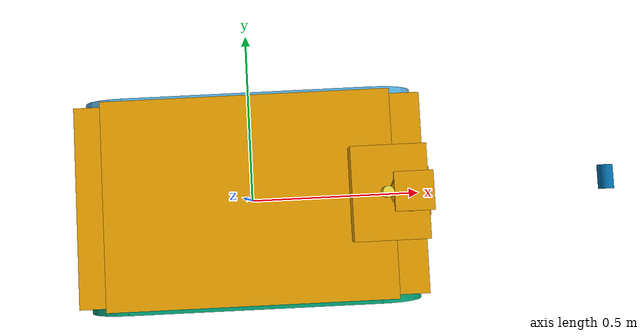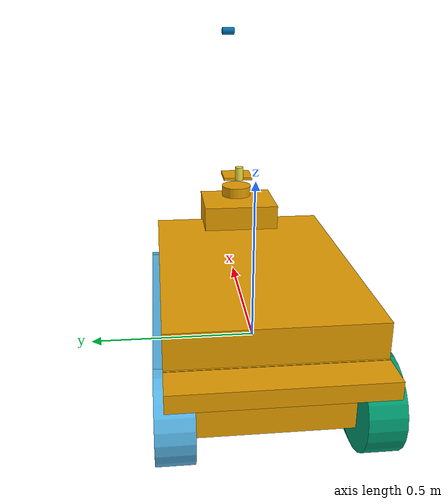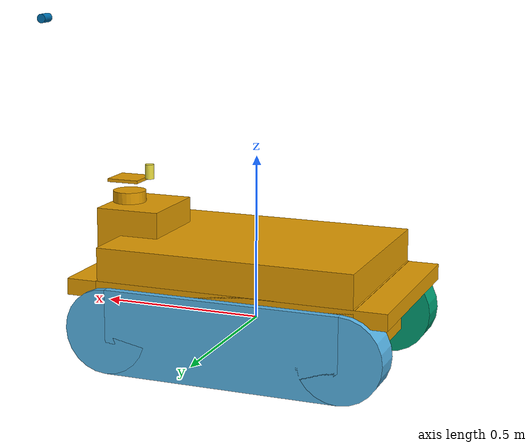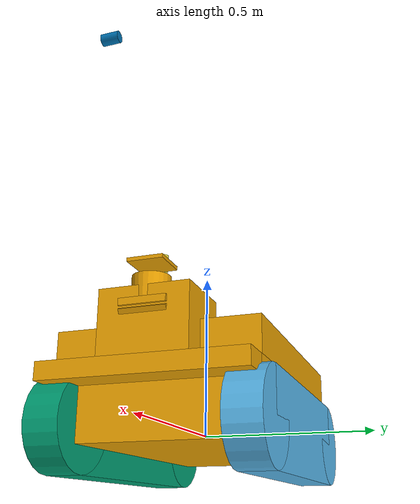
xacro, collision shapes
<?xml version='1.0' encoding='utf-8'?>
<robot name='marble_hd2_sensor_config_1' xmlns:xacro='http://ros.org/wiki/xacro'>
  <xacro:arg name="name" default="marble_hd2_sensor_config_1"/>
  <xacro:property name="robot_namespace" value="$(arg name)"/>
  <link name='${robot_namespace}/base_link'>
    <inertial>
      <origin xyz='-0.000649 -0.084945 0.062329' rpy='0 -0 0'/>
      <mass value='34.02'/>
      <inertia ixx='0.615397' ixy='-0.0240585' ixz='-0.120749' iyy='1.75388' iyz='-0.0028322' izz='2.03641'/>
    </inertial>
    <collision name='base_link_collision'>
      <origin xyz='0 0 0.12' rpy='0 -0 0'/>
      <geometry>
        <box size='0.9874 0.5709 0.05'/>
      </geometry>
    </collision>
    <collision name='base_link_collision_bottom'>
      <origin xyz='0 0 0.046' rpy='0 -0 0'/>
      <geometry>
        <box size='0.8 0.5709 0.2'/>
      </geometry>
    </collision>
    <collision name='base_link_collision_1'>
      <origin xyz='0 0 0.185625' rpy='0 -0 0'/>
      <geometry>
        <box size='0.78992 0.5709 0.12375'/>
      </geometry>
    </collision>
    <collision name='base_link_fixed_joint_lump__camera/camera_link_collision_1'>
      <origin xyz='0 0 0.05' rpy='0 -0 0'/>
      <geometry>
        <box size='0.0078 0.13 0.0192'/>
      </geometry>
    </collision>
    <collision name='base_link_fixed_joint_lump__camera/camera_link_collision_2'>
      <origin xyz='0.478 0 0.285' rpy='0 -0 0'/>
      <geometry>
        <box size='0.0078 0.13 0.0192'/>
      </geometry>
    </collision>
    <collision name='base_link_fixed_joint_lump__camera/camera_link_collision_3'>
      <origin xyz='0.473 0 0.26' rpy='0 0.5236 0'/>
      <geometry>
        <box size='0.0078 0.13 0.0192'/>
      </geometry>
    </collision>
    <collision name='base_link_fixed_joint_lump__velodyne_base_link_collision_6'>
      <origin xyz='0.424 0 0.327' rpy='0 -0 0'/>
      <geometry>
        <cylinder radius='0.0516' length='0.0717'/>
      </geometry>
    </collision>
    <collision name='base_link_fixed_joint_lump__velodyne_gimbal_plate_base_link_collision_7'>
      <origin xyz='0.424 0 0.4' rpy='0 -0 0'/>
      <geometry>
        <box size='0.1 0.1 0.01'/>
      </geometry>
    </collision>
    <collision name='base_link_fixed_joint_lump__sensor_tower_8'>
      <origin xyz='0.374 0 0.215' rpy='0 -0 0'/>
      <geometry>
        <box size='0.2 0.25 0.225'/>
      </geometry>
    </collision>
    <collision name='base_link_fixed_joint_lump__computer_block_9'>
      <origin xyz='0.05 0 0.155' rpy='0 -0 0'/>
      <geometry>
        <box size='0.3 0.355 0.16'/>
      </geometry>
    </collision>
    <visual name='base_link_visual'>
      <origin xyz='0 0 0' rpy='1.57 -0 1.57'/>
      <geometry>
        <mesh filename='package://marble_hd2_sensor_config_1/meshes/hd2_chassis.stl' scale='1 1 1'/>
      </geometry>
    </visual>
    <visual name='track_left_visual'>
      <origin xyz='0 0.2625 0' rpy='1.57 -0 1.57'/>
      <geometry>
        <mesh filename='package://marble_hd2_sensor_config_1/meshes/track.stl' scale='1 1 1'/>
      </geometry>
    </visual>
    <visual name='track_right_visual'>
      <origin xyz='0 -0.2625 0' rpy='1.57 -0 1.57'/>
      <geometry>
        <mesh filename='package://marble_hd2_sensor_config_1/meshes/track.stl' scale='1 1 1'/>
      </geometry>
    </visual>
    <visual name='base_link_fixed_joint_lump__camera/camera_link_visual_1'>
      <origin xyz='0.44 0 0.26' rpy='0 0.5236 0'/>
      <geometry>
        <mesh filename='package://marble_hd2_sensor_config_1/meshes/realsense.dae' scale='1 1 1'/>
      </geometry>
    </visual>
    <visual name='base_link_fixed_joint_lump__camera/camera_link_visual_2'>
      <origin xyz='0.44 0 0.295' rpy='0 -0 0'/>
      <geometry>
        <mesh filename='package://marble_hd2_sensor_config_1/meshes/realsense.dae' scale='1 1 1'/>
      </geometry>
    </visual>
    <visual name='base_link_fixed_joint_lump__velodyne_base_link_visual_10'>
      <origin xyz='0.354 0 0.327' rpy='0 -0 0'/>
      <geometry>
        <mesh filename='package://marble_hd2_sensor_config_1/meshes/VLP16_base_1.dae' scale='1 1 1'/>
      </geometry>
    </visual>
    <visual name='base_link_fixed_joint_lump__velodyne_base_link_visual_11'>
      <origin xyz='0.354 0 0.327' rpy='0 -0 0'/>
      <geometry>
        <mesh filename='package://marble_hd2_sensor_config_1/meshes/VLP16_base_2.dae' scale='1 1 1'/>
      </geometry>
    </visual>
    <visual name='base_link_fixed_joint_lump__velodyne_visual_12'>
      <origin xyz='0.354 0 0.327' rpy='0 -0 0'/>
      <geometry>
        <mesh filename='package://marble_hd2_sensor_config_1/meshes/VLP16_scan.dae' scale='1 1 1'/>
      </geometry>
    </visual>
    <visual name='base_link_fixed_joint_lump__planar_lidar_link_visual_14'>
      <origin xyz='0.354 0 0.127' rpy='0 -0 0'/>
      <geometry>
        <cylinder radius='0.045' length='0.05'/>
      </geometry>
    </visual>
    <visual name='base_link_fixed_joint_lump__velodyne_gimbal_plate_15'>
      <origin xyz='0.354 0 0.4' rpy='0 -0 0'/>
      <geometry>
        <box size='0.06 0.06 0.01'/>
      </geometry>
    </visual>
    <visual name='base_link_fixed_joint_lump__sensor_tower_16'>
      <origin xyz='0.354 0 0.19' rpy='0 -0 0'/>
      <geometry>
        <box size='0.18 0.25 0.275'/>
      </geometry>
    </visual>
    <visual name='base_link_fixed_joint_lump__computer_block_17'>
      <origin xyz='0.05 0 0.135' rpy='0 -0 0'/>
      <geometry>
        <box size='0.3 0.355 0.175'/>
      </geometry>
    </visual>
    <visual name='base_link_fixed_joint_lid_18'>
      <origin xyz='0 0 0.05' rpy='0 -0 0'/>
      <geometry>
        <box size='0.7 0.35 0.02'/>
      </geometry>
    </visual>
  </link>
  <sensor name='camera_front' update_rate='30'>
    <parent link='${robot_namespace}/base_link'/>
    <origin xyz='0.44 0 0.36' rpy='0 -0 0'/>
    <camera>
      <image width='1280' height='720' format='R8G8B8' hfov='1.5184' near='0.01' far='300' />
    </camera>
  </sensor>
  <sensor name='camera_down' update_rate='30'>
    <parent link='${robot_namespace}/base_link'/>
    <origin xyz='0.44 0 0.335' rpy='0 0.5236 0'/>
    <camera>
      <image width='1280' height='720' format='R8G8B8' hfov='1.5184' near='0.01' far='300' />
    </camera>
  </sensor>
  <sensor name='planar_laser' update_rate='10'>
    <parent link='${robot_namespace}/base_link'/>
    <origin xyz='0.354 0 0.127' rpy='0 -0 0'/>
  </sensor>
  <sensor name='front_laser' update_rate='20'>
    <parent link='${robot_namespace}/base_link'/>
    <origin xyz='0.354 0 0.387' rpy='0 -0 0'/>
  </sensor>
  <sensor name='imu_sensor' update_rate='250'>
    <parent link='${robot_namespace}/base_link'/>
    <origin xyz='0 0 0' rpy='0 -0 0'/>
  </sensor>
  <link name='${robot_namespace}/left_track'>
    <collision name='front_left_wheel_link_collision'>
      <origin xyz='0.36 0 0' rpy='1.5708 -0 0'/>
      <geometry>
        <cylinder radius='0.129' length='0.1'/>
      </geometry>
    </collision>
    <collision name='rear_left_wheel_link_collision'>
      <origin xyz='-0.36 0 0' rpy='1.5708 -0 0'/>
      <geometry>
        <cylinder radius='0.129' length='0.1'/>
      </geometry>
    </collision>
    <collision name='left_track_box_collision'>
      <geometry>
        <box size='0.72 0.1 0.258'/>
      </geometry>
    </collision>
  </link>
  <link name='${robot_namespace}/right_track'>
    <collision name='front_right_wheel_link_collision'>
      <origin xyz='0.36 0 0' rpy='1.5708 -0 0'/>
      <geometry>
        <cylinder radius='0.129' length='0.1'/>
      </geometry>
    </collision>
    <collision name='rear_right_wheel_link_collision'>
      <origin xyz='-0.36 0 0' rpy='1.5708 -0 0'/>
      <geometry>
        <cylinder radius='0.129' length='0.1'/>
      </geometry>
    </collision>
    <collision name='right_track_box_collision'>
      <geometry>
        <box size='0.72 0.1 0.258'/>
      </geometry>
    </collision>
  </link>
  <joint name='left_track_j' type='fixed'>
    <origin xyz='0 0.26 0' rpy='0 0 0'/>
    <parent link='${robot_namespace}/base_link'/>
    <child link='${robot_namespace}/left_track'/>
  </joint>
  <joint name='right_track_j' type='fixed'>
    <origin xyz='0 -0.26 0' rpy='0 0 0'/>
    <parent link='${robot_namespace}/base_link'/>
    <child link='${robot_namespace}/right_track'/>
  </joint>
  <link name='${robot_namespace}/pan_gimbal_link'>
    <inertial>
      <origin xyz='0 0 0' rpy='0 -0 0'/>
      <mass value='0.1'/>
      <inertia ixx='1' ixy='0' ixz='0' iyy='1' iyz='0' izz='1'/>
    </inertial>
    <collision name='pan_gimbal_link_collision'>
      <origin xyz='0 0 0' rpy='0 -0 0'/>
      <geometry>
        <cylinder radius='0.014' length='0.045'/>
      </geometry>
    </collision>
    <visual name='pan_gimbal_link_visual'>
      <origin xyz='0 0 0' rpy='0 -0 0'/>
      <geometry>
        <cylinder radius='0.014' length='0.045'/>
      </geometry>
    </visual>
  </link>
  <link name='${robot_namespace}/tilt_gimbal_link'>
    <inertial>
      <origin xyz='0 0 0' rpy='1.5708 -0 0'/>
      <mass value='0.1'/>
      <inertia ixx='1' ixy='0' ixz='0' iyy='1' iyz='0' izz='1'/>
    </inertial>
    <collision name='tilt_gimbal_link_collision'>
      <origin xyz='0 0 0' rpy='1.5708 -0 0'/>
      <geometry>
        <cylinder radius='0.014' length='0.045'/>
      </geometry>
    </collision>
    <visual name='tilt_gimbal_link_visual'>
      <origin xyz='0 0 0' rpy='1.5708 -0 0'/>
      <geometry>
        <cylinder radius='0.014' length='0.045'/>
      </geometry>
    </visual>
    <visual name='tilt_gimbal_link_fixed_joint_lump__camera/camera_link_visual_0'>
      <origin xyz='0 0 0.03' rpy='0 -0 0'/>
      <geometry>
        <mesh filename='package://marble_hd2_sensor_config_1/meshes/realsense.dae' scale='1 1 1'/>
      </geometry>
    </visual>
    <visual name='tilt_gimbal_link_fixed_joint_lump_bot_camera_plate_link_visual_1'>
      <origin xyz='0 0 0.017' rpy='0 -0 0'/>
      <geometry>
        <box size='0.025 0.13 0.007'/>
      </geometry>
    </visual>
    <visual name='tilt_gimbal_link_fixed_joint_lump_bot_camera_plate_link_visual_2'>
      <origin xyz='0 0 0.042' rpy='0 -0 0'/>
      <geometry>
        <box size='0.025 0.13 0.007'/>
      </geometry>
    </visual>
    <visual name='flashlight_flashlight_light_source_lamp_viz_visual'>
      <origin xyz='0 0 0.065' rpy='-0 1.3208 3.14'/>
      <geometry>
        <cylinder radius='0.019' length='0.005'/>
      </geometry>
    </visual>
  </link>
  <sensor name='camera_pan_tilt' update_rate='30'>
    <parent link='${robot_namespace}/tilt_gimbal_link'/>
    <origin xyz='0 0 0.03' rpy='0 -0 0'/>
    <camera>
      <image width='1280' height='720' format='R8G8B8' hfov='1.5184' near='0.01' far='300' />
    </camera>
  </sensor>
  <joint name='pan_gimbal_joint' type='revolute'>
    <origin xyz='0.354 0 0.427' rpy='0 -0 0'/>
    <parent link='${robot_namespace}/base_link'/>
    <child link='${robot_namespace}/pan_gimbal_link'/>
    <dynamics damping='0' friction='0' />
    <axis xyz='0 0 1'/>
    <limit lower='-1e+16' upper='1e+16' effort='-1' velocity='-1'/>
  </joint>
  <joint name='tilt_gimbal_joint' type='revolute'>
    <origin xyz='0.354 0 0.46' rpy='0 -0 0'/>
    <parent link='${robot_namespace}/pan_gimbal_link'/>
    <child link='${robot_namespace}/tilt_gimbal_link'/>
    <dynamics damping='0' friction='0' />
    <axis xyz='0 1 0'/>
    <limit lower='-2.79253' upper='2.79253' effort='-1' velocity='-1'/>
  </joint>
</robot>
